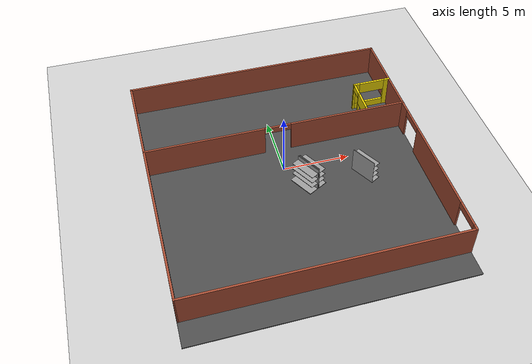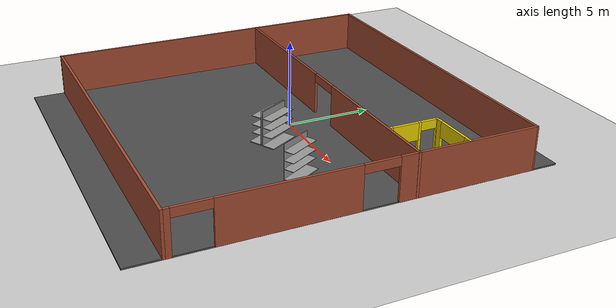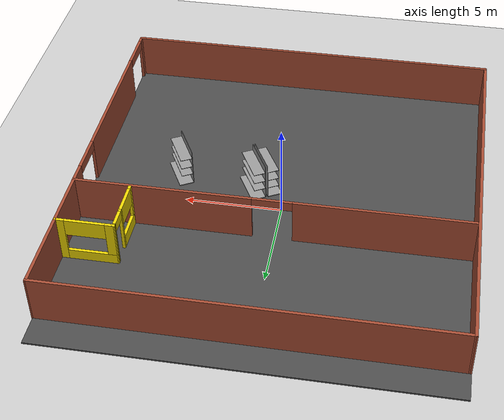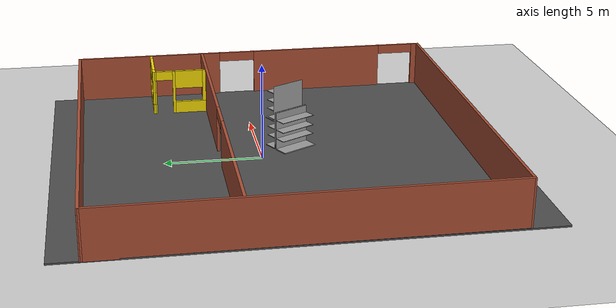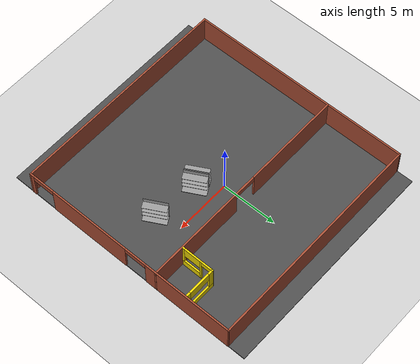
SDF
<sdf version="1.6">
 <world name="default">
  <model name="ground_plane">
   <static>1</static>
   <link name="link">
    <collision name="collision">
     <geometry><plane><normal>0 0 1</normal><size>100 100</size></plane></geometry>
     <surface>
      <contact><collide_bitmask>65535</collide_bitmask></contact>
      <friction><ode><mu>100</mu><mu2>50</mu2></ode></friction>
     </surface>
    </collision>
    <visual name="visual">
     <cast_shadows>0</cast_shadows>
     <geometry><plane><normal>0 0 1</normal><size>100 100</size></plane></geometry>
     <material>
      <script><uri>file://media/materials/scripts/gazebo.material</uri><name>Gazebo/Grey</name></script>
     </material>
    </visual>
   </link>
  </model>
  <model name="building">
   <pose>0.102054 -0.79848 0 0 -0 0</pose>
   <link name="Wall_1">
    <collision name="Wall_1_Collision">
     <geometry><box><size>20.0396 0.15 2.5</size></box></geometry>
     <pose>0 0 1.25 0 -0 0</pose>
    </collision>
    <visual name="Wall_1_Visual">
     <pose>0 0 1.25 0 -0 0</pose>
     <geometry><box><size>20.0396 0.15 2.5</size></box></geometry>
     <material>
      <script><uri>file://media/materials/scripts/gazebo.material</uri><name>Gazebo/Bricks</name></script>
      <ambient>1 1 1 1</ambient>
     </material>
     <meta><layer>0</layer></meta>
    </visual>
    <pose>-0.003384 9.925 0 0 -0 -0.00199</pose>
   </link>
   <link name="Wall_11">
    <pose>8.49082 5.85121 0 0 -0 3.14159</pose>
    <visual name="Wall_11_Visual_0">
     <pose>-1.24971 0 1.25 0 -0 0</pose>
     <geometry><box><size>0.485738 0.15 2.5</size></box></geometry>
     <material>
      <script><uri>file://media/materials/scripts/gazebo.material</uri><name>Gazebo/Grey</name></script>
      <ambient>0.929412 0.831373 0 1</ambient>
     </material>
     <meta><layer>0</layer></meta>
    </visual>
    <collision name="Wall_11_Collision_0">
     <geometry><box><size>0.485738 0.15 2.5</size></box></geometry>
     <pose>-1.24971 0 1.25 0 -0 0</pose>
    </collision>
    <visual name="Wall_11_Visual_1">
     <pose>0.242869 0 0.3 0 -0 0</pose>
     <geometry><box><size>2.49943 0.15 0.6</size></box></geometry>
     <material>
      <script><uri>file://media/materials/scripts/gazebo.material</uri><name>Gazebo/Grey</name></script>
      <ambient>0.929412 0.831373 0 1</ambient>
     </material>
     <meta><layer>0</layer></meta>
    </visual>
    <collision name="Wall_11_Collision_1">
     <geometry><box><size>2.49943 0.15 0.6</size></box></geometry>
     <pose>0.242869 0 0.3 0 -0 0</pose>
    </collision>
    <visual name="Wall_11_Visual_2">
     <pose>1.24287 0 1.55 0 -0 0</pose>
     <geometry><box><size>0.499431 0.15 1.9</size></box></geometry>
     <material>
      <script><uri>file://media/materials/scripts/gazebo.material</uri><name>Gazebo/Grey</name></script>
      <ambient>0.929412 0.831373 0 1</ambient>
     </material>
     <meta><layer>0</layer></meta>
    </visual>
    <collision name="Wall_11_Collision_2">
     <geometry><box><size>0.499431 0.15 1.9</size></box></geometry>
     <pose>1.24287 0 1.55 0 -0 0</pose>
    </collision>
    <visual name="Wall_11_Visual_3">
     <pose>-0.006846 0 2.05 0 -0 0</pose>
     <geometry><box><size>2 0.15 0.9</size></box></geometry>
     <material>
      <script><uri>file://media/materials/scripts/gazebo.material</uri><name>Gazebo/Grey</name></script>
      <ambient>0.929412 0.831373 0 1</ambient>
     </material>
     <meta><layer>0</layer></meta>
    </visual>
    <collision name="Wall_11_Collision_3">
     <geometry><box><size>2 0.15 0.9</size></box></geometry>
     <pose>-0.006846 0 2.05 0 -0 0</pose>
    </collision>
   </link>
   <link name="Wall_12">
    <pose>7.06982 4.44571 0 0 -0 -1.57329</pose>
    <visual name="Wall_12_Visual_0">
     <pose>-1.38426 0 1.25 0 -0 0</pose>
     <geometry><box><size>0.192441 0.15 2.5</size></box></geometry>
     <material>
      <script><uri>file://media/materials/scripts/gazebo.material</uri><name>Gazebo/Grey</name></script>
      <ambient>0.929412 0.831373 0 1</ambient>
     </material>
     <meta><layer>0</layer></meta>
    </visual>
    <collision name="Wall_12_Collision_0">
     <geometry><box><size>0.192441 0.15 2.5</size></box></geometry>
     <pose>-1.38426 0 1.25 0 -0 0</pose>
    </collision>
    <visual name="Wall_12_Visual_1">
     <pose>-0.315915 0 1.25 0 -0 0</pose>
     <geometry><box><size>0.144256 0.15 2.5</size></box></geometry>
     <material>
      <script><uri>file://media/materials/scripts/gazebo.material</uri><name>Gazebo/Grey</name></script>
      <ambient>0.929412 0.831373 0 1</ambient>
     </material>
     <meta><layer>0</layer></meta>
    </visual>
    <collision name="Wall_12_Collision_1">
     <geometry><box><size>0.144256 0.15 2.5</size></box></geometry>
     <pose>-0.315915 0 1.25 0 -0 0</pose>
    </collision>
    <visual name="Wall_12_Visual_2">
     <pose>0.618349 0 0.35 0 -0 0</pose>
     <geometry><box><size>1.72427 0.15 0.7</size></box></geometry>
     <material>
      <script><uri>file://media/materials/scripts/gazebo.material</uri><name>Gazebo/Grey</name></script>
      <ambient>0.929412 0.831373 0 1</ambient>
     </material>
     <meta><layer>0</layer></meta>
    </visual>
    <collision name="Wall_12_Collision_2">
     <geometry><box><size>1.72427 0.15 0.7</size></box></geometry>
     <pose>0.618349 0 0.35 0 -0 0</pose>
    </collision>
    <visual name="Wall_12_Visual_3">
     <pose>1.37478 0 1.6 0 -0 0</pose>
     <geometry><box><size>0.211404 0.15 1.8</size></box></geometry>
     <material>
      <script><uri>file://media/materials/scripts/gazebo.material</uri><name>Gazebo/Grey</name></script>
      <ambient>0.929412 0.831373 0 1</ambient>
     </material>
     <meta><layer>0</layer></meta>
    </visual>
    <collision name="Wall_12_Collision_3">
     <geometry><box><size>0.211404 0.15 1.8</size></box></geometry>
     <pose>1.37478 0 1.6 0 -0 0</pose>
    </collision>
    <visual name="Wall_12_Visual_4">
     <pose>0.512647 0 2 0 -0 0</pose>
     <geometry><box><size>1.51287 0.15 1</size></box></geometry>
     <material>
      <script><uri>file://media/materials/scripts/gazebo.material</uri><name>Gazebo/Grey</name></script>
      <ambient>0.929412 0.831373 0 1</ambient>
     </material>
     <meta><layer>0</layer></meta>
    </visual>
    <collision name="Wall_12_Collision_4">
     <geometry><box><size>1.51287 0.15 1</size></box></geometry>
     <pose>0.512647 0 2 0 -0 0</pose>
    </collision>
    <visual name="Wall_12_Visual_5">
     <pose>-0.838044 0 2.25 0 -0 0</pose>
     <geometry><box><size>0.9 0.15 0.5</size></box></geometry>
     <material>
      <script><uri>file://media/materials/scripts/gazebo.material</uri><name>Gazebo/Grey</name></script>
      <ambient>0.929412 0.831373 0 1</ambient>
     </material>
     <meta><layer>0</layer></meta>
    </visual>
    <collision name="Wall_12_Collision_5">
     <geometry><box><size>0.9 0.15 0.5</size></box></geometry>
     <pose>-0.838044 0 2.25 0 -0 0</pose>
    </collision>
   </link>
   <link name="Wall_2">
    <pose>9.94132 -0.019793 0 0 -0 -1.5708</pose>
    <visual name="Wall_2_Visual_0">
     <pose>-5.95566 0 1.25 0 -0 0</pose>
     <geometry><box><size>8.08867 0.15 2.5</size></box></geometry>
     <material>
      <script><uri>file://media/materials/scripts/gazebo.material</uri><name>Gazebo/Bricks</name></script>
      <ambient>1 1 1 1</ambient>
     </material>
     <meta><layer>0</layer></meta>
    </visual>
    <collision name="Wall_2_Collision_0">
     <geometry><box><size>8.08867 0.15 2.5</size></box></geometry>
     <pose>-5.95566 0 1.25 0 -0 0</pose>
    </collision>
    <visual name="Wall_2_Visual_1">
     <pose>3.81514 0 1.25 0 -0 0</pose>
     <geometry><box><size>7.45293 0.15 2.5</size></box></geometry>
     <material>
      <script><uri>file://media/materials/scripts/gazebo.material</uri><name>Gazebo/Bricks</name></script>
      <ambient>1 1 1 1</ambient>
     </material>
     <meta><layer>0</layer></meta>
    </visual>
    <collision name="Wall_2_Collision_1">
     <geometry><box><size>7.45293 0.15 2.5</size></box></geometry>
     <pose>3.81514 0 1.25 0 -0 0</pose>
    </collision>
    <visual name="Wall_2_Visual_2">
     <pose>9.7708 0 1.25 0 -0 0</pose>
     <geometry><box><size>0.458396 0.15 2.5</size></box></geometry>
     <material>
      <script><uri>file://media/materials/scripts/gazebo.material</uri><name>Gazebo/Bricks</name></script>
      <ambient>1 1 1 1</ambient>
     </material>
     <meta><layer>0</layer></meta>
    </visual>
    <collision name="Wall_2_Collision_2">
     <geometry><box><size>0.458396 0.15 2.5</size></box></geometry>
     <pose>9.7708 0 1.25 0 -0 0</pose>
    </collision>
    <visual name="Wall_2_Visual_3">
     <pose>-0.91133 0 2.25 0 -0 0</pose>
     <geometry><box><size>2 0.15 0.5</size></box></geometry>
     <material>
      <script><uri>file://media/materials/scripts/gazebo.material</uri><name>Gazebo/Bricks</name></script>
      <ambient>1 1 1 1</ambient>
     </material>
     <meta><layer>0</layer></meta>
    </visual>
    <collision name="Wall_2_Collision_3">
     <geometry><box><size>2 0.15 0.5</size></box></geometry>
     <pose>-0.91133 0 2.25 0 -0 0</pose>
    </collision>
    <visual name="Wall_2_Visual_4">
     <pose>8.5416 0 2.25 0 -0 0</pose>
     <geometry><box><size>2 0.15 0.5</size></box></geometry>
     <material>
      <script><uri>file://media/materials/scripts/gazebo.material</uri><name>Gazebo/Bricks</name></script>
      <ambient>1 1 1 1</ambient>
     </material>
     <meta><layer>0</layer></meta>
    </visual>
    <collision name="Wall_2_Collision_4">
     <geometry><box><size>2 0.15 0.5</size></box></geometry>
     <pose>8.5416 0 2.25 0 -0 0</pose>
    </collision>
   </link>
   <link name="Wall_4">
    <collision name="Wall_4_Collision">
     <geometry><box><size>20 0.15 2.5</size></box></geometry>
     <pose>0 0 1.25 0 -0 0</pose>
    </collision>
    <visual name="Wall_4_Visual">
     <pose>0 0 1.25 0 -0 0</pose>
     <geometry><box><size>20 0.15 2.5</size></box></geometry>
     <material>
      <script><uri>file://media/materials/scripts/gazebo.material</uri><name>Gazebo/Bricks</name></script>
      <ambient>1 1 1 1</ambient>
     </material>
     <meta><layer>0</layer></meta>
    </visual>
    <pose>0.016317 -9.94479 0 0 -0 3.14159</pose>
   </link>
   <link name="Wall_5">
    <collision name="Wall_5_Collision">
     <geometry><box><size>20.0396 0.15 2.5</size></box></geometry>
     <pose>0 0 1.25 0 -0 0</pose>
    </collision>
    <visual name="Wall_5_Visual">
     <pose>0 0 1.25 0 -0 0</pose>
     <geometry><box><size>20.0396 0.15 2.5</size></box></geometry>
     <material>
      <script><uri>file://media/materials/scripts/gazebo.material</uri><name>Gazebo/Bricks</name></script>
      <ambient>1 1 1 1</ambient>
     </material>
     <meta><layer>0</layer></meta>
    </visual>
    <pose>-9.92838 0 0 0 -0 1.57278</pose>
   </link>
   <link name="Wall_9">
    <pose>0.023317 2.91821 0 0 -0 0</pose>
    <visual name="Wall_9_Visual_0">
     <pose>-5.50075 0 1.25 0 -0 0</pose>
     <geometry><box><size>8.9985 0.15 2.5</size></box></geometry>
     <material>
      <script><uri>file://media/materials/scripts/gazebo.material</uri><name>Gazebo/Bricks</name></script>
      <ambient>1 1 1 1</ambient>
     </material>
     <meta><layer>0</layer></meta>
    </visual>
    <collision name="Wall_9_Collision_0">
     <geometry><box><size>8.9985 0.15 2.5</size></box></geometry>
     <pose>-5.50075 0 1.25 0 -0 0</pose>
    </collision>
    <visual name="Wall_9_Visual_1">
     <pose>5.49925 0 1.25 0 -0 0</pose>
     <geometry><box><size>9.0015 0.15 2.5</size></box></geometry>
     <material>
      <script><uri>file://media/materials/scripts/gazebo.material</uri><name>Gazebo/Bricks</name></script>
      <ambient>1 1 1 1</ambient>
     </material>
     <meta><layer>0</layer></meta>
    </visual>
    <collision name="Wall_9_Collision_1">
     <geometry><box><size>9.0015 0.15 2.5</size></box></geometry>
     <pose>5.49925 0 1.25 0 -0 0</pose>
    </collision>
    <visual name="Wall_9_Visual_2">
     <pose>-0.001497 0 2.25 0 -0 0</pose>
     <geometry><box><size>2 0.15 0.5</size></box></geometry>
     <material>
      <script><uri>file://media/materials/scripts/gazebo.material</uri><name>Gazebo/Bricks</name></script>
      <ambient>1 1 1 1</ambient>
     </material>
     <meta><layer>0</layer></meta>
    </visual>
    <collision name="Wall_9_Collision_2">
     <geometry><box><size>2 0.15 0.5</size></box></geometry>
     <pose>-0.001497 0 2.25 0 -0 0</pose>
    </collision>
   </link>
   <static>1</static>
  </model>
  <model name="asphalt_plane">
   <static>1</static>
   <link name="link">
    <collision name="collision"><geometry><box><size>20 23.3157 0.1</size></box></geometry></collision>
    <visual name="visual">
     <cast_shadows>0</cast_shadows>
     <geometry><box><size>20 23.3157 0.1</size></box></geometry>
     <material>
      <script>
       <uri>model://asphalt_plane/materials/scripts</uri>
       <uri>model://asphalt_plane/materials/textures</uri>
       <name>vrc/asphalt</name>
      </script>
     </material>
    </visual>
   </link>
   <pose>0.082168 -0.989597 0 0 -0 0</pose>
  </model>
  <model name="LongShelf_1_clone_clone_2">
   <link name="link_0">
    <inertial>
     <mass>0.38468</mass>
     <inertia>
      <ixx>0.0321196</ixx>
      <ixy>0</ixy>
      <ixz>0</ixz>
      <iyy>2.41752</iyy>
      <iyz>0</iyz>
      <izz>2.44951</izz>
     </inertia>
    </inertial>
    <pose>0.01298 0.384233 -0.994649 0 -0 0</pose>
    <visual name="visual">
     <geometry><box><size>2 0.75 0.05</size></box></geometry>
     <material>
      <lighting>1</lighting>
      <script><uri>file://media/materials/scripts/gazebo.material</uri><name>Gazebo/Grey</name></script>
      <shader type="vertex"><normal_map>__default__</normal_map></shader>
      <ambient>0.3 0.3 0.3 1</ambient>
      <diffuse>0.7 0.7 0.7 1</diffuse>
      <specular>0.01 0.01 0.01 1</specular>
      <emissive>0 0 0 1</emissive>
     </material>
    </visual>
    <collision name="collision">
     <geometry><box><size>2 0.75 0.05</size></box></geometry>
     <surface>
      <friction>
       <ode><mu>1</mu><mu2>1</mu2><fdir1>0 0 0</fdir1><slip1>0</slip1><slip2>0</slip2></ode>
       <torsional>
        <coefficient>1</coefficient>
        <patch_radius>0</patch_radius>
        <surface_radius>0</surface_radius>
        <use_patch_radius>1</use_patch_radius>
        <ode><slip>0</slip></ode>
       </torsional>
      </friction>
      <bounce><restitution_coefficient>0</restitution_coefficient><threshold>1e+06</threshold></bounce>
      <contact>
       <collide_without_contact>0</collide_without_contact>
       <collide_without_contact_bitmask>1</collide_without_contact_bitmask>
       <collide_bitmask>1</collide_bitmask>
       <ode>
        <soft_cfm>0</soft_cfm>
        <soft_erp>0.2</soft_erp>
        <kp>1e+13</kp>
        <kd>1</kd>
        <max_vel>0.01</max_vel>
        <min_depth>0</min_depth>
       </ode>
       <bullet>
        <split_impulse>1</split_impulse>
        <split_impulse_penetration_threshold>-0.01</split_impulse_penetration_threshold>
        <soft_cfm>0</soft_cfm>
        <soft_erp>0.2</soft_erp>
        <kp>1e+13</kp>
        <kd>1</kd>
       </bullet>
      </contact>
     </surface>
    </collision>
   </link>
   <link name="link_1">
    <inertial>
     <mass>0.748605</mass>
     <inertia><ixx>0.445095</ixx><ixy>0</ixy><ixz>0</ixz><iyy>5.12268</iyy><iyz>0</iyz><izz>4.67771</izz></inertia>
    </inertial>
    <pose>0.009966 -0.000866 0 0 -0 0</pose>
    <visual name="visual">
     <geometry><box><size>2 0.025 2</size></box></geometry>
     <material>
      <lighting>1</lighting>
      <script><uri>file://media/materials/scripts/gazebo.material</uri><name>Gazebo/Grey</name></script>
      <shader type="vertex"><normal_map>__default__</normal_map></shader>
      <ambient>0.3 0.3 0.3 1</ambient>
      <diffuse>0.7 0.7 0.7 1</diffuse>
      <specular>0.01 0.01 0.01 1</specular>
      <emissive>0 0 0 1</emissive>
     </material>
    </visual>
    <collision name="collision">
     <geometry><box><size>2 0.025 2</size></box></geometry>
     <surface>
      <friction>
       <ode><mu>1</mu><mu2>1</mu2><fdir1>0 0 0</fdir1><slip1>0</slip1><slip2>0</slip2></ode>
       <torsional>
        <coefficient>1</coefficient>
        <patch_radius>0</patch_radius>
        <surface_radius>0</surface_radius>
        <use_patch_radius>1</use_patch_radius>
        <ode><slip>0</slip></ode>
       </torsional>
      </friction>
      <bounce><restitution_coefficient>0</restitution_coefficient><threshold>1e+06</threshold></bounce>
      <contact>
       <collide_without_contact>0</collide_without_contact>
       <collide_without_contact_bitmask>1</collide_without_contact_bitmask>
       <collide_bitmask>1</collide_bitmask>
       <ode>
        <soft_cfm>0</soft_cfm>
        <soft_erp>0.2</soft_erp>
        <kp>1e+13</kp>
        <kd>1</kd>
        <max_vel>0.01</max_vel>
        <min_depth>0</min_depth>
       </ode>
       <bullet>
        <split_impulse>1</split_impulse>
        <split_impulse_penetration_threshold>-0.01</split_impulse_penetration_threshold>
        <soft_cfm>0</soft_cfm>
        <soft_erp>0.2</soft_erp>
        <kp>1e+13</kp>
        <kd>1</kd>
       </bullet>
      </contact>
     </surface>
    </collision>
   </link>
   <link name="link_2">
    <inertial>
     <mass>0.0597214</mass>
     <inertia>
      <ixx>0.00742007</ixx>
      <ixy>0</ixy>
      <ixz>0</ixz>
      <iyy>0.00498871</iyy>
      <iyz>0</iyz>
      <izz>0.0123849</izz>
     </inertia>
    </inertial>
    <pose>0.010881 0.305507 0.086252 0 -0 0</pose>
    <visual name="visual">
     <geometry><box><size>2 0.6 0.025</size></box></geometry>
     <material>
      <lighting>1</lighting>
      <script><uri>file://media/materials/scripts/gazebo.material</uri><name>Gazebo/Grey</name></script>
      <shader type="vertex"><normal_map>__default__</normal_map></shader>
      <ambient>0.3 0.3 0.3 1</ambient>
      <diffuse>0.7 0.7 0.7 1</diffuse>
      <specular>0.01 0.01 0.01 1</specular>
      <emissive>0 0 0 1</emissive>
     </material>
    </visual>
    <collision name="collision">
     <geometry><box><size>2 0.600001 0.025</size></box></geometry>
     <surface>
      <friction>
       <ode><mu>1</mu><mu2>1</mu2><fdir1>0 0 0</fdir1><slip1>0</slip1><slip2>0</slip2></ode>
       <torsional>
        <coefficient>1</coefficient>
        <patch_radius>0</patch_radius>
        <surface_radius>0</surface_radius>
        <use_patch_radius>1</use_patch_radius>
        <ode><slip>0</slip></ode>
       </torsional>
      </friction>
      <bounce><restitution_coefficient>0</restitution_coefficient><threshold>1e+06</threshold></bounce>
      <contact>
       <collide_without_contact>0</collide_without_contact>
       <collide_without_contact_bitmask>1</collide_without_contact_bitmask>
       <collide_bitmask>1</collide_bitmask>
       <ode>
        <soft_cfm>0</soft_cfm>
        <soft_erp>0.2</soft_erp>
        <kp>1e+13</kp>
        <kd>1</kd>
        <max_vel>0.01</max_vel>
        <min_depth>0</min_depth>
       </ode>
       <bullet>
        <split_impulse>1</split_impulse>
        <split_impulse_penetration_threshold>-0.01</split_impulse_penetration_threshold>
        <soft_cfm>0</soft_cfm>
        <soft_erp>0.2</soft_erp>
        <kp>1e+13</kp>
        <kd>1</kd>
       </bullet>
      </contact>
     </surface>
    </collision>
   </link>
   <link name="link_2_clone">
    <inertial>
     <mass>0.0597214</mass>
     <inertia>
      <ixx>0.00742007</ixx>
      <ixy>0</ixy>
      <ixz>0</ixz>
      <iyy>0.00498871</iyy>
      <iyz>0</iyz>
      <izz>0.0123849</izz>
     </inertia>
    </inertial>
    <pose>0.012798 0.30891 0.609885 0 -0 0</pose>
    <visual name="visual">
     <geometry><box><size>2 0.6 0.025</size></box></geometry>
     <material>
      <lighting>1</lighting>
      <script><uri>file://media/materials/scripts/gazebo.material</uri><name>Gazebo/Grey</name></script>
      <shader type="vertex"><normal_map>__default__</normal_map></shader>
      <ambient>0.3 0.3 0.3 1</ambient>
      <diffuse>0.7 0.7 0.7 1</diffuse>
      <specular>0.01 0.01 0.01 1</specular>
      <emissive>0 0 0 1</emissive>
     </material>
    </visual>
    <collision name="collision">
     <geometry><box><size>2 0.600001 0.025</size></box></geometry>
     <surface>
      <friction>
       <ode><mu>1</mu><mu2>1</mu2><fdir1>0 0 0</fdir1><slip1>0</slip1><slip2>0</slip2></ode>
       <torsional>
        <coefficient>1</coefficient>
        <patch_radius>0</patch_radius>
        <surface_radius>0</surface_radius>
        <use_patch_radius>1</use_patch_radius>
        <ode><slip>0</slip></ode>
       </torsional>
      </friction>
      <bounce><restitution_coefficient>0</restitution_coefficient><threshold>1e+06</threshold></bounce>
      <contact>
       <collide_without_contact>0</collide_without_contact>
       <collide_without_contact_bitmask>1</collide_without_contact_bitmask>
       <collide_bitmask>1</collide_bitmask>
       <ode>
        <soft_cfm>0</soft_cfm>
        <soft_erp>0.2</soft_erp>
        <kp>1e+13</kp>
        <kd>1</kd>
        <max_vel>0.01</max_vel>
        <min_depth>0</min_depth>
       </ode>
       <bullet>
        <split_impulse>1</split_impulse>
        <split_impulse_penetration_threshold>-0.01</split_impulse_penetration_threshold>
        <soft_cfm>0</soft_cfm>
        <soft_erp>0.2</soft_erp>
        <kp>1e+13</kp>
        <kd>1</kd>
       </bullet>
      </contact>
     </surface>
    </collision>
   </link>
   <link name="link_2_clone_0">
    <inertial>
     <mass>0.0597214</mass>
     <inertia>
      <ixx>0.00742007</ixx>
      <ixy>0</ixy>
      <ixz>0</ixz>
      <iyy>0.00498871</iyy>
      <iyz>0</iyz>
      <izz>0.0123849</izz>
     </inertia>
    </inertial>
    <pose>0.012613 0.308582 -0.399561 0 -0 0</pose>
    <visual name="visual">
     <geometry><box><size>2 0.6 0.025</size></box></geometry>
     <material>
      <lighting>1</lighting>
      <script><uri>file://media/materials/scripts/gazebo.material</uri><name>Gazebo/Grey</name></script>
      <shader type="vertex"><normal_map>__default__</normal_map></shader>
      <ambient>0.3 0.3 0.3 1</ambient>
      <diffuse>0.7 0.7 0.7 1</diffuse>
      <specular>0.01 0.01 0.01 1</specular>
      <emissive>0 0 0 1</emissive>
     </material>
    </visual>
    <collision name="collision">
     <geometry><box><size>2 0.600001 0.025</size></box></geometry>
     <surface>
      <friction>
       <ode><mu>1</mu><mu2>1</mu2><fdir1>0 0 0</fdir1><slip1>0</slip1><slip2>0</slip2></ode>
       <torsional>
        <coefficient>1</coefficient>
        <patch_radius>0</patch_radius>
        <surface_radius>0</surface_radius>
        <use_patch_radius>1</use_patch_radius>
        <ode><slip>0</slip></ode>
       </torsional>
      </friction>
      <bounce><restitution_coefficient>0</restitution_coefficient><threshold>1e+06</threshold></bounce>
      <contact>
       <collide_without_contact>0</collide_without_contact>
       <collide_without_contact_bitmask>1</collide_without_contact_bitmask>
       <collide_bitmask>1</collide_bitmask>
       <ode>
        <soft_cfm>0</soft_cfm>
        <soft_erp>0.2</soft_erp>
        <kp>1e+13</kp>
        <kd>1</kd>
        <max_vel>0.01</max_vel>
        <min_depth>0</min_depth>
       </ode>
       <bullet>
        <split_impulse>1</split_impulse>
        <split_impulse_penetration_threshold>-0.01</split_impulse_penetration_threshold>
        <soft_cfm>0</soft_cfm>
        <soft_erp>0.2</soft_erp>
        <kp>1e+13</kp>
        <kd>1</kd>
       </bullet>
      </contact>
     </surface>
    </collision>
   </link>
   <joint name="link_1_JOINT_0" type="fixed">
    <parent>link_1</parent>
    <child>link_0</child>
    <physics>
     <ode><limit><cfm>0</cfm><erp>0.2</erp></limit><suspension><cfm>0</cfm><erp>0.2</erp></suspension></ode>
    </physics>
   </joint>
   <joint name="link_1_JOINT_1" type="fixed">
    <parent>link_1</parent>
    <child>link_2_clone_0</child>
    <physics>
     <ode><limit><cfm>0</cfm><erp>0.2</erp></limit><suspension><cfm>0</cfm><erp>0.2</erp></suspension></ode>
    </physics>
   </joint>
   <joint name="link_1_JOINT_2" type="revolute">
    <parent>link_1</parent>
    <child>link_2</child>
    <axis>
     <xyz>1 0 0</xyz>
     <use_parent_model_frame>0</use_parent_model_frame>
     <limit>
      <lower>-1.79769e+308</lower>
      <upper>1.79769e+308</upper>
      <effort>-1</effort>
      <velocity>-1</velocity>
     </limit>
     <dynamics>
      <spring_reference>0</spring_reference>
      <spring_stiffness>0</spring_stiffness>
      <damping>0</damping>
      <friction>0</friction>
     </dynamics>
    </axis>
    <physics>
     <ode><limit><cfm>0</cfm><erp>0.2</erp></limit><suspension><cfm>0</cfm><erp>0.2</erp></suspension></ode>
    </physics>
   </joint>
   <joint name="link_1_JOINT_3" type="fixed">
    <parent>link_1</parent>
    <child>link_2_clone</child>
    <physics>
     <ode><limit><cfm>0</cfm><erp>0.2</erp></limit><suspension><cfm>0</cfm><erp>0.2</erp></suspension></ode>
    </physics>
   </joint>
   <static>0</static>
   <pose>5.37202 -2.18754 1.06964 -2e-06 -0 -1.0662</pose>
  </model>
  <model name="LongShelf_1_clone_2">
   <link name="link_0">
    <inertial>
     <mass>0.38468</mass>
     <inertia>
      <ixx>0.0321196</ixx>
      <ixy>0</ixy>
      <ixz>0</ixz>
      <iyy>2.41752</iyy>
      <iyz>0</iyz>
      <izz>2.44951</izz>
     </inertia>
    </inertial>
    <pose>0.01298 0.384233 -0.994649 0 -0 0</pose>
    <visual name="visual">
     <geometry><box><size>2 0.75 0.05</size></box></geometry>
     <material>
      <lighting>1</lighting>
      <script><uri>file://media/materials/scripts/gazebo.material</uri><name>Gazebo/Grey</name></script>
      <shader type="vertex"><normal_map>__default__</normal_map></shader>
      <ambient>0.3 0.3 0.3 1</ambient>
      <diffuse>0.7 0.7 0.7 1</diffuse>
      <specular>0.01 0.01 0.01 1</specular>
      <emissive>0 0 0 1</emissive>
     </material>
    </visual>
    <collision name="collision">
     <geometry><box><size>2 0.75 0.05</size></box></geometry>
     <surface>
      <friction>
       <ode><mu>1</mu><mu2>1</mu2><fdir1>0 0 0</fdir1><slip1>0</slip1><slip2>0</slip2></ode>
       <torsional>
        <coefficient>1</coefficient>
        <patch_radius>0</patch_radius>
        <surface_radius>0</surface_radius>
        <use_patch_radius>1</use_patch_radius>
        <ode><slip>0</slip></ode>
       </torsional>
      </friction>
      <bounce><restitution_coefficient>0</restitution_coefficient><threshold>1e+06</threshold></bounce>
      <contact>
       <collide_without_contact>0</collide_without_contact>
       <collide_without_contact_bitmask>1</collide_without_contact_bitmask>
       <collide_bitmask>1</collide_bitmask>
       <ode>
        <soft_cfm>0</soft_cfm>
        <soft_erp>0.2</soft_erp>
        <kp>1e+13</kp>
        <kd>1</kd>
        <max_vel>0.01</max_vel>
        <min_depth>0</min_depth>
       </ode>
       <bullet>
        <split_impulse>1</split_impulse>
        <split_impulse_penetration_threshold>-0.01</split_impulse_penetration_threshold>
        <soft_cfm>0</soft_cfm>
        <soft_erp>0.2</soft_erp>
        <kp>1e+13</kp>
        <kd>1</kd>
       </bullet>
      </contact>
     </surface>
    </collision>
   </link>
   <link name="link_1">
    <inertial>
     <mass>0.748605</mass>
     <inertia><ixx>0.445095</ixx><ixy>0</ixy><ixz>0</ixz><iyy>5.12268</iyy><iyz>0</iyz><izz>4.67771</izz></inertia>
    </inertial>
    <pose>0.009966 -0.000866 0 0 -0 0</pose>
    <visual name="visual">
     <geometry><box><size>2 0.025 2</size></box></geometry>
     <material>
      <lighting>1</lighting>
      <script><uri>file://media/materials/scripts/gazebo.material</uri><name>Gazebo/Grey</name></script>
      <shader type="vertex"><normal_map>__default__</normal_map></shader>
      <ambient>0.3 0.3 0.3 1</ambient>
      <diffuse>0.7 0.7 0.7 1</diffuse>
      <specular>0.01 0.01 0.01 1</specular>
      <emissive>0 0 0 1</emissive>
     </material>
    </visual>
    <collision name="collision">
     <geometry><box><size>2 0.025 2</size></box></geometry>
     <surface>
      <friction>
       <ode><mu>1</mu><mu2>1</mu2><fdir1>0 0 0</fdir1><slip1>0</slip1><slip2>0</slip2></ode>
       <torsional>
        <coefficient>1</coefficient>
        <patch_radius>0</patch_radius>
        <surface_radius>0</surface_radius>
        <use_patch_radius>1</use_patch_radius>
        <ode><slip>0</slip></ode>
       </torsional>
      </friction>
      <bounce><restitution_coefficient>0</restitution_coefficient><threshold>1e+06</threshold></bounce>
      <contact>
       <collide_without_contact>0</collide_without_contact>
       <collide_without_contact_bitmask>1</collide_without_contact_bitmask>
       <collide_bitmask>1</collide_bitmask>
       <ode>
        <soft_cfm>0</soft_cfm>
        <soft_erp>0.2</soft_erp>
        <kp>1e+13</kp>
        <kd>1</kd>
        <max_vel>0.01</max_vel>
        <min_depth>0</min_depth>
       </ode>
       <bullet>
        <split_impulse>1</split_impulse>
        <split_impulse_penetration_threshold>-0.01</split_impulse_penetration_threshold>
        <soft_cfm>0</soft_cfm>
        <soft_erp>0.2</soft_erp>
        <kp>1e+13</kp>
        <kd>1</kd>
       </bullet>
      </contact>
     </surface>
    </collision>
   </link>
   <link name="link_2">
    <inertial>
     <mass>0.0597214</mass>
     <inertia>
      <ixx>0.00742007</ixx>
      <ixy>0</ixy>
      <ixz>0</ixz>
      <iyy>0.00498871</iyy>
      <iyz>0</iyz>
      <izz>0.0123849</izz>
     </inertia>
    </inertial>
    <pose>0.010881 0.305507 0.086252 0 -0 0</pose>
    <visual name="visual">
     <geometry><box><size>2 0.6 0.025</size></box></geometry>
     <material>
      <lighting>1</lighting>
      <script><uri>file://media/materials/scripts/gazebo.material</uri><name>Gazebo/Grey</name></script>
      <shader type="vertex"><normal_map>__default__</normal_map></shader>
      <ambient>0.3 0.3 0.3 1</ambient>
      <diffuse>0.7 0.7 0.7 1</diffuse>
      <specular>0.01 0.01 0.01 1</specular>
      <emissive>0 0 0 1</emissive>
     </material>
    </visual>
    <collision name="collision">
     <geometry><box><size>2 0.600001 0.025</size></box></geometry>
     <surface>
      <friction>
       <ode><mu>1</mu><mu2>1</mu2><fdir1>0 0 0</fdir1><slip1>0</slip1><slip2>0</slip2></ode>
       <torsional>
        <coefficient>1</coefficient>
        <patch_radius>0</patch_radius>
        <surface_radius>0</surface_radius>
        <use_patch_radius>1</use_patch_radius>
        <ode><slip>0</slip></ode>
       </torsional>
      </friction>
      <bounce><restitution_coefficient>0</restitution_coefficient><threshold>1e+06</threshold></bounce>
      <contact>
       <collide_without_contact>0</collide_without_contact>
       <collide_without_contact_bitmask>1</collide_without_contact_bitmask>
       <collide_bitmask>1</collide_bitmask>
       <ode>
        <soft_cfm>0</soft_cfm>
        <soft_erp>0.2</soft_erp>
        <kp>1e+13</kp>
        <kd>1</kd>
        <max_vel>0.01</max_vel>
        <min_depth>0</min_depth>
       </ode>
       <bullet>
        <split_impulse>1</split_impulse>
        <split_impulse_penetration_threshold>-0.01</split_impulse_penetration_threshold>
        <soft_cfm>0</soft_cfm>
        <soft_erp>0.2</soft_erp>
        <kp>1e+13</kp>
        <kd>1</kd>
       </bullet>
      </contact>
     </surface>
    </collision>
   </link>
   <link name="link_2_clone">
    <inertial>
     <mass>0.0597214</mass>
     <inertia>
      <ixx>0.00742007</ixx>
      <ixy>0</ixy>
      <ixz>0</ixz>
      <iyy>0.00498871</iyy>
      <iyz>0</iyz>
      <izz>0.0123849</izz>
     </inertia>
    </inertial>
    <pose>0.012798 0.30891 0.609885 0 -0 0</pose>
    <visual name="visual">
     <geometry><box><size>2 0.6 0.025</size></box></geometry>
     <material>
      <lighting>1</lighting>
      <script><uri>file://media/materials/scripts/gazebo.material</uri><name>Gazebo/Grey</name></script>
      <shader type="vertex"><normal_map>__default__</normal_map></shader>
      <ambient>0.3 0.3 0.3 1</ambient>
      <diffuse>0.7 0.7 0.7 1</diffuse>
      <specular>0.01 0.01 0.01 1</specular>
      <emissive>0 0 0 1</emissive>
     </material>
    </visual>
    <collision name="collision">
     <geometry><box><size>2 0.600001 0.025</size></box></geometry>
     <surface>
      <friction>
       <ode><mu>1</mu><mu2>1</mu2><fdir1>0 0 0</fdir1><slip1>0</slip1><slip2>0</slip2></ode>
       <torsional>
        <coefficient>1</coefficient>
        <patch_radius>0</patch_radius>
        <surface_radius>0</surface_radius>
        <use_patch_radius>1</use_patch_radius>
        <ode><slip>0</slip></ode>
       </torsional>
      </friction>
      <bounce><restitution_coefficient>0</restitution_coefficient><threshold>1e+06</threshold></bounce>
      <contact>
       <collide_without_contact>0</collide_without_contact>
       <collide_without_contact_bitmask>1</collide_without_contact_bitmask>
       <collide_bitmask>1</collide_bitmask>
       <ode>
        <soft_cfm>0</soft_cfm>
        <soft_erp>0.2</soft_erp>
        <kp>1e+13</kp>
        <kd>1</kd>
        <max_vel>0.01</max_vel>
        <min_depth>0</min_depth>
       </ode>
       <bullet>
        <split_impulse>1</split_impulse>
        <split_impulse_penetration_threshold>-0.01</split_impulse_penetration_threshold>
        <soft_cfm>0</soft_cfm>
        <soft_erp>0.2</soft_erp>
        <kp>1e+13</kp>
        <kd>1</kd>
       </bullet>
      </contact>
     </surface>
    </collision>
   </link>
   <link name="link_2_clone_0">
    <inertial>
     <mass>0.0597214</mass>
     <inertia>
      <ixx>0.00742007</ixx>
      <ixy>0</ixy>
      <ixz>0</ixz>
      <iyy>0.00498871</iyy>
      <iyz>0</iyz>
      <izz>0.0123849</izz>
     </inertia>
    </inertial>
    <pose>0.012613 0.308582 -0.399561 0 -0 0</pose>
    <visual name="visual">
     <geometry><box><size>2 0.6 0.025</size></box></geometry>
     <material>
      <lighting>1</lighting>
      <script><uri>file://media/materials/scripts/gazebo.material</uri><name>Gazebo/Grey</name></script>
      <shader type="vertex"><normal_map>__default__</normal_map></shader>
      <ambient>0.3 0.3 0.3 1</ambient>
      <diffuse>0.7 0.7 0.7 1</diffuse>
      <specular>0.01 0.01 0.01 1</specular>
      <emissive>0 0 0 1</emissive>
     </material>
    </visual>
    <collision name="collision">
     <geometry><box><size>2 0.600001 0.025</size></box></geometry>
     <surface>
      <friction>
       <ode><mu>1</mu><mu2>1</mu2><fdir1>0 0 0</fdir1><slip1>0</slip1><slip2>0</slip2></ode>
       <torsional>
        <coefficient>1</coefficient>
        <patch_radius>0</patch_radius>
        <surface_radius>0</surface_radius>
        <use_patch_radius>1</use_patch_radius>
        <ode><slip>0</slip></ode>
       </torsional>
      </friction>
      <bounce><restitution_coefficient>0</restitution_coefficient><threshold>1e+06</threshold></bounce>
      <contact>
       <collide_without_contact>0</collide_without_contact>
       <collide_without_contact_bitmask>1</collide_without_contact_bitmask>
       <collide_bitmask>1</collide_bitmask>
       <ode>
        <soft_cfm>0</soft_cfm>
        <soft_erp>0.2</soft_erp>
        <kp>1e+13</kp>
        <kd>1</kd>
        <max_vel>0.01</max_vel>
        <min_depth>0</min_depth>
       </ode>
       <bullet>
        <split_impulse>1</split_impulse>
        <split_impulse_penetration_threshold>-0.01</split_impulse_penetration_threshold>
        <soft_cfm>0</soft_cfm>
        <soft_erp>0.2</soft_erp>
        <kp>1e+13</kp>
        <kd>1</kd>
       </bullet>
      </contact>
     </surface>
    </collision>
   </link>
   <joint name="link_1_JOINT_0" type="fixed">
    <parent>link_1</parent>
    <child>link_0</child>
    <physics>
     <ode><limit><cfm>0</cfm><erp>0.2</erp></limit><suspension><cfm>0</cfm><erp>0.2</erp></suspension></ode>
    </physics>
   </joint>
   <joint name="link_1_JOINT_1" type="fixed">
    <parent>link_1</parent>
    <child>link_2_clone_0</child>
    <physics>
     <ode><limit><cfm>0</cfm><erp>0.2</erp></limit><suspension><cfm>0</cfm><erp>0.2</erp></suspension></ode>
    </physics>
   </joint>
   <joint name="link_1_JOINT_2" type="revolute">
    <parent>link_1</parent>
    <child>link_2</child>
    <axis>
     <xyz>1 0 0</xyz>
     <use_parent_model_frame>0</use_parent_model_frame>
     <limit>
      <lower>-1.79769e+308</lower>
      <upper>1.79769e+308</upper>
      <effort>-1</effort>
      <velocity>-1</velocity>
     </limit>
     <dynamics>
      <spring_reference>0</spring_reference>
      <spring_stiffness>0</spring_stiffness>
      <damping>0</damping>
      <friction>0</friction>
     </dynamics>
    </axis>
    <physics>
     <ode><limit><cfm>0</cfm><erp>0.2</erp></limit><suspension><cfm>0</cfm><erp>0.2</erp></suspension></ode>
    </physics>
   </joint>
   <joint name="link_1_JOINT_3" type="fixed">
    <parent>link_1</parent>
    <child>link_2_clone</child>
    <physics>
     <ode><limit><cfm>0</cfm><erp>0.2</erp></limit><suspension><cfm>0</cfm><erp>0.2</erp></suspension></ode>
    </physics>
   </joint>
   <static>0</static>
   <pose>1.34726 -1.71774 1.06964 -1e-06 -0 2.08028</pose>
  </model>
  <model name="LongShelf_1_clone_clone_3">
   <link name="link_0">
    <inertial>
     <mass>0.38468</mass>
     <inertia>
      <ixx>0.0321196</ixx>
      <ixy>0</ixy>
      <ixz>0</ixz>
      <iyy>2.41752</iyy>
      <iyz>0</iyz>
      <izz>2.44951</izz>
     </inertia>
    </inertial>
    <pose>0.01298 0.384233 -0.994649 0 -0 0</pose>
    <visual name="visual">
     <geometry><box><size>2 0.75 0.05</size></box></geometry>
     <material>
      <lighting>1</lighting>
      <script><uri>file://media/materials/scripts/gazebo.material</uri><name>Gazebo/Grey</name></script>
      <shader type="vertex"><normal_map>__default__</normal_map></shader>
      <ambient>0.3 0.3 0.3 1</ambient>
      <diffuse>0.7 0.7 0.7 1</diffuse>
      <specular>0.01 0.01 0.01 1</specular>
      <emissive>0 0 0 1</emissive>
     </material>
    </visual>
    <collision name="collision">
     <geometry><box><size>2 0.75 0.05</size></box></geometry>
     <surface>
      <friction>
       <ode><mu>1</mu><mu2>1</mu2><fdir1>0 0 0</fdir1><slip1>0</slip1><slip2>0</slip2></ode>
       <torsional>
        <coefficient>1</coefficient>
        <patch_radius>0</patch_radius>
        <surface_radius>0</surface_radius>
        <use_patch_radius>1</use_patch_radius>
        <ode><slip>0</slip></ode>
       </torsional>
      </friction>
      <bounce><restitution_coefficient>0</restitution_coefficient><threshold>1e+06</threshold></bounce>
      <contact>
       <collide_without_contact>0</collide_without_contact>
       <collide_without_contact_bitmask>1</collide_without_contact_bitmask>
       <collide_bitmask>1</collide_bitmask>
       <ode>
        <soft_cfm>0</soft_cfm>
        <soft_erp>0.2</soft_erp>
        <kp>1e+13</kp>
        <kd>1</kd>
        <max_vel>0.01</max_vel>
        <min_depth>0</min_depth>
       </ode>
       <bullet>
        <split_impulse>1</split_impulse>
        <split_impulse_penetration_threshold>-0.01</split_impulse_penetration_threshold>
        <soft_cfm>0</soft_cfm>
        <soft_erp>0.2</soft_erp>
        <kp>1e+13</kp>
        <kd>1</kd>
       </bullet>
      </contact>
     </surface>
    </collision>
   </link>
   <link name="link_1">
    <inertial>
     <mass>0.748605</mass>
     <inertia><ixx>0.445095</ixx><ixy>0</ixy><ixz>0</ixz><iyy>5.12268</iyy><iyz>0</iyz><izz>4.67771</izz></inertia>
    </inertial>
    <pose>0.009966 -0.000866 0 0 -0 0</pose>
    <visual name="visual">
     <geometry><box><size>2 0.025 2</size></box></geometry>
     <material>
      <lighting>1</lighting>
      <script><uri>file://media/materials/scripts/gazebo.material</uri><name>Gazebo/Grey</name></script>
      <shader type="vertex"><normal_map>__default__</normal_map></shader>
      <ambient>0.3 0.3 0.3 1</ambient>
      <diffuse>0.7 0.7 0.7 1</diffuse>
      <specular>0.01 0.01 0.01 1</specular>
      <emissive>0 0 0 1</emissive>
     </material>
    </visual>
    <collision name="collision">
     <geometry><box><size>2 0.025 2</size></box></geometry>
     <surface>
      <friction>
       <ode><mu>1</mu><mu2>1</mu2><fdir1>0 0 0</fdir1><slip1>0</slip1><slip2>0</slip2></ode>
       <torsional>
        <coefficient>1</coefficient>
        <patch_radius>0</patch_radius>
        <surface_radius>0</surface_radius>
        <use_patch_radius>1</use_patch_radius>
        <ode><slip>0</slip></ode>
       </torsional>
      </friction>
      <bounce><restitution_coefficient>0</restitution_coefficient><threshold>1e+06</threshold></bounce>
      <contact>
       <collide_without_contact>0</collide_without_contact>
       <collide_without_contact_bitmask>1</collide_without_contact_bitmask>
       <collide_bitmask>1</collide_bitmask>
       <ode>
        <soft_cfm>0</soft_cfm>
        <soft_erp>0.2</soft_erp>
        <kp>1e+13</kp>
        <kd>1</kd>
        <max_vel>0.01</max_vel>
        <min_depth>0</min_depth>
       </ode>
       <bullet>
        <split_impulse>1</split_impulse>
        <split_impulse_penetration_threshold>-0.01</split_impulse_penetration_threshold>
        <soft_cfm>0</soft_cfm>
        <soft_erp>0.2</soft_erp>
        <kp>1e+13</kp>
        <kd>1</kd>
       </bullet>
      </contact>
     </surface>
    </collision>
   </link>
   <link name="link_2">
    <inertial>
     <mass>0.0597214</mass>
     <inertia>
      <ixx>0.00742007</ixx>
      <ixy>0</ixy>
      <ixz>0</ixz>
      <iyy>0.00498871</iyy>
      <iyz>0</iyz>
      <izz>0.0123849</izz>
     </inertia>
    </inertial>
    <pose>0.010881 0.305507 0.086252 0 -0 0</pose>
    <visual name="visual">
     <geometry><box><size>2 0.6 0.025</size></box></geometry>
     <material>
      <lighting>1</lighting>
      <script><uri>file://media/materials/scripts/gazebo.material</uri><name>Gazebo/Grey</name></script>
      <shader type="vertex"><normal_map>__default__</normal_map></shader>
      <ambient>0.3 0.3 0.3 1</ambient>
      <diffuse>0.7 0.7 0.7 1</diffuse>
      <specular>0.01 0.01 0.01 1</specular>
      <emissive>0 0 0 1</emissive>
     </material>
    </visual>
    <collision name="collision">
     <geometry><box><size>2 0.600001 0.025</size></box></geometry>
     <surface>
      <friction>
       <ode><mu>1</mu><mu2>1</mu2><fdir1>0 0 0</fdir1><slip1>0</slip1><slip2>0</slip2></ode>
       <torsional>
        <coefficient>1</coefficient>
        <patch_radius>0</patch_radius>
        <surface_radius>0</surface_radius>
        <use_patch_radius>1</use_patch_radius>
        <ode><slip>0</slip></ode>
       </torsional>
      </friction>
      <bounce><restitution_coefficient>0</restitution_coefficient><threshold>1e+06</threshold></bounce>
      <contact>
       <collide_without_contact>0</collide_without_contact>
       <collide_without_contact_bitmask>1</collide_without_contact_bitmask>
       <collide_bitmask>1</collide_bitmask>
       <ode>
        <soft_cfm>0</soft_cfm>
        <soft_erp>0.2</soft_erp>
        <kp>1e+13</kp>
        <kd>1</kd>
        <max_vel>0.01</max_vel>
        <min_depth>0</min_depth>
       </ode>
       <bullet>
        <split_impulse>1</split_impulse>
        <split_impulse_penetration_threshold>-0.01</split_impulse_penetration_threshold>
        <soft_cfm>0</soft_cfm>
        <soft_erp>0.2</soft_erp>
        <kp>1e+13</kp>
        <kd>1</kd>
       </bullet>
      </contact>
     </surface>
    </collision>
   </link>
   <link name="link_2_clone">
    <inertial>
     <mass>0.0597214</mass>
     <inertia>
      <ixx>0.00742007</ixx>
      <ixy>0</ixy>
      <ixz>0</ixz>
      <iyy>0.00498871</iyy>
      <iyz>0</iyz>
      <izz>0.0123849</izz>
     </inertia>
    </inertial>
    <pose>0.012798 0.30891 0.609885 0 -0 0</pose>
    <visual name="visual">
     <geometry><box><size>2 0.6 0.025</size></box></geometry>
     <material>
      <lighting>1</lighting>
      <script><uri>file://media/materials/scripts/gazebo.material</uri><name>Gazebo/Grey</name></script>
      <shader type="vertex"><normal_map>__default__</normal_map></shader>
      <ambient>0.3 0.3 0.3 1</ambient>
      <diffuse>0.7 0.7 0.7 1</diffuse>
      <specular>0.01 0.01 0.01 1</specular>
      <emissive>0 0 0 1</emissive>
     </material>
    </visual>
    <collision name="collision">
     <geometry><box><size>2 0.600001 0.025</size></box></geometry>
     <surface>
      <friction>
       <ode><mu>1</mu><mu2>1</mu2><fdir1>0 0 0</fdir1><slip1>0</slip1><slip2>0</slip2></ode>
       <torsional>
        <coefficient>1</coefficient>
        <patch_radius>0</patch_radius>
        <surface_radius>0</surface_radius>
        <use_patch_radius>1</use_patch_radius>
        <ode><slip>0</slip></ode>
       </torsional>
      </friction>
      <bounce><restitution_coefficient>0</restitution_coefficient><threshold>1e+06</threshold></bounce>
      <contact>
       <collide_without_contact>0</collide_without_contact>
       <collide_without_contact_bitmask>1</collide_without_contact_bitmask>
       <collide_bitmask>1</collide_bitmask>
       <ode>
        <soft_cfm>0</soft_cfm>
        <soft_erp>0.2</soft_erp>
        <kp>1e+13</kp>
        <kd>1</kd>
        <max_vel>0.01</max_vel>
        <min_depth>0</min_depth>
       </ode>
       <bullet>
        <split_impulse>1</split_impulse>
        <split_impulse_penetration_threshold>-0.01</split_impulse_penetration_threshold>
        <soft_cfm>0</soft_cfm>
        <soft_erp>0.2</soft_erp>
        <kp>1e+13</kp>
        <kd>1</kd>
       </bullet>
      </contact>
     </surface>
    </collision>
   </link>
   <link name="link_2_clone_0">
    <inertial>
     <mass>0.0597214</mass>
     <inertia>
      <ixx>0.00742007</ixx>
      <ixy>0</ixy>
      <ixz>0</ixz>
      <iyy>0.00498871</iyy>
      <iyz>0</iyz>
      <izz>0.0123849</izz>
     </inertia>
    </inertial>
    <pose>0.012613 0.308582 -0.399561 0 -0 0</pose>
    <visual name="visual">
     <geometry><box><size>2 0.6 0.025</size></box></geometry>
     <material>
      <lighting>1</lighting>
      <script><uri>file://media/materials/scripts/gazebo.material</uri><name>Gazebo/Grey</name></script>
      <shader type="vertex"><normal_map>__default__</normal_map></shader>
      <ambient>0.3 0.3 0.3 1</ambient>
      <diffuse>0.7 0.7 0.7 1</diffuse>
      <specular>0.01 0.01 0.01 1</specular>
      <emissive>0 0 0 1</emissive>
     </material>
    </visual>
    <collision name="collision">
     <geometry><box><size>2 0.600001 0.025</size></box></geometry>
     <surface>
      <friction>
       <ode><mu>1</mu><mu2>1</mu2><fdir1>0 0 0</fdir1><slip1>0</slip1><slip2>0</slip2></ode>
       <torsional>
        <coefficient>1</coefficient>
        <patch_radius>0</patch_radius>
        <surface_radius>0</surface_radius>
        <use_patch_radius>1</use_patch_radius>
        <ode><slip>0</slip></ode>
       </torsional>
      </friction>
      <bounce><restitution_coefficient>0</restitution_coefficient><threshold>1e+06</threshold></bounce>
      <contact>
       <collide_without_contact>0</collide_without_contact>
       <collide_without_contact_bitmask>1</collide_without_contact_bitmask>
       <collide_bitmask>1</collide_bitmask>
       <ode>
        <soft_cfm>0</soft_cfm>
        <soft_erp>0.2</soft_erp>
        <kp>1e+13</kp>
        <kd>1</kd>
        <max_vel>0.01</max_vel>
        <min_depth>0</min_depth>
       </ode>
       <bullet>
        <split_impulse>1</split_impulse>
        <split_impulse_penetration_threshold>-0.01</split_impulse_penetration_threshold>
        <soft_cfm>0</soft_cfm>
        <soft_erp>0.2</soft_erp>
        <kp>1e+13</kp>
        <kd>1</kd>
       </bullet>
      </contact>
     </surface>
    </collision>
   </link>
   <joint name="link_1_JOINT_0" type="fixed">
    <parent>link_1</parent>
    <child>link_0</child>
    <physics>
     <ode><limit><cfm>0</cfm><erp>0.2</erp></limit><suspension><cfm>0</cfm><erp>0.2</erp></suspension></ode>
    </physics>
   </joint>
   <joint name="link_1_JOINT_1" type="fixed">
    <parent>link_1</parent>
    <child>link_2_clone_0</child>
    <physics>
     <ode><limit><cfm>0</cfm><erp>0.2</erp></limit><suspension><cfm>0</cfm><erp>0.2</erp></suspension></ode>
    </physics>
   </joint>
   <joint name="link_1_JOINT_2" type="revolute">
    <parent>link_1</parent>
    <child>link_2</child>
    <axis>
     <xyz>1 0 0</xyz>
     <use_parent_model_frame>0</use_parent_model_frame>
     <limit>
      <lower>-1.79769e+308</lower>
      <upper>1.79769e+308</upper>
      <effort>-1</effort>
      <velocity>-1</velocity>
     </limit>
     <dynamics>
      <spring_reference>0</spring_reference>
      <spring_stiffness>0</spring_stiffness>
      <damping>0</damping>
      <friction>0</friction>
     </dynamics>
    </axis>
    <physics>
     <ode><limit><cfm>0</cfm><erp>0.2</erp></limit><suspension><cfm>0</cfm><erp>0.2</erp></suspension></ode>
    </physics>
   </joint>
   <joint name="link_1_JOINT_3" type="fixed">
    <parent>link_1</parent>
    <child>link_2_clone</child>
    <physics>
     <ode><limit><cfm>0</cfm><erp>0.2</erp></limit><suspension><cfm>0</cfm><erp>0.2</erp></suspension></ode>
    </physics>
   </joint>
   <static>0</static>
   <pose>1.43994 -1.65011 1.06964 3e-06 -0 -1.06592</pose>
  </model>
 </world>
</sdf>
